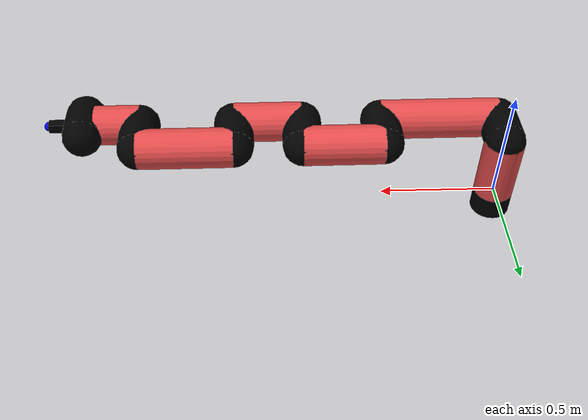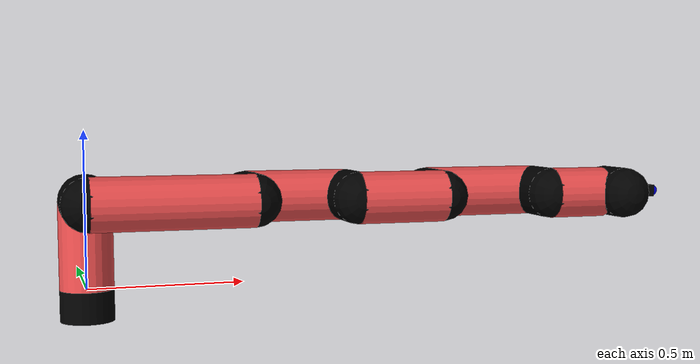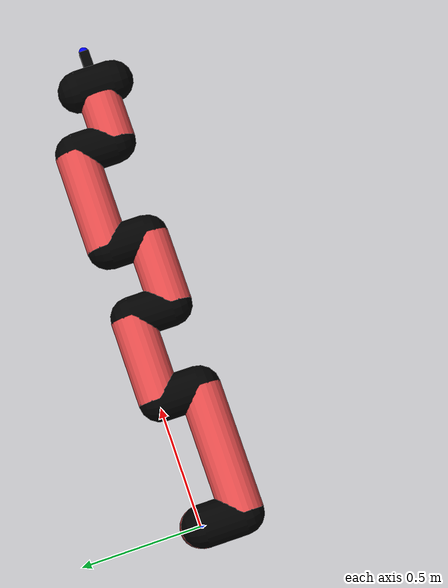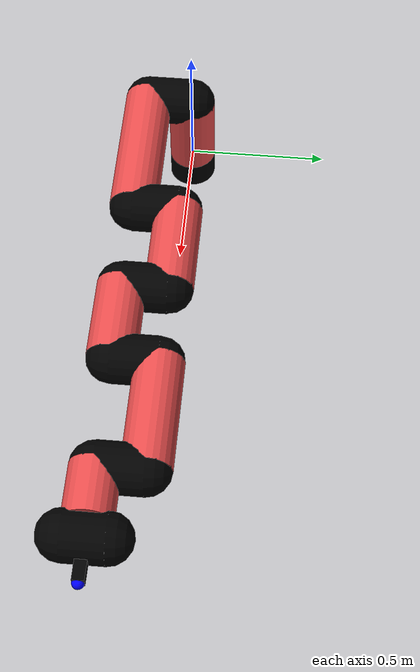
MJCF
<mujoco model="manipulator">
		<compiler angle="degree" coordinate="local" inertiafromgeom="auto" meshdir="meshes/"/>
		<option gravity="0 0 0" integrator="RK4" iterations="30" timestep="0.01"/>

		<default>
		<joint armature="1" limited="true" stiffness="10" damping="15" frictionloss="5.0"/>
		<geom conaffinity="1" condim="3" contype="1" friction=".5 .1 .1" margin="0.002"/>
		<motor ctrllimited="true"/>
		<position ctrllimited="true"/>
		</default>

		<asset>
		<texture builtin="gradient" height="100" rgb1="1.0 1.0 1.0" rgb2="1.0 1.0 1.0" type="skybox" width="100"/>
		<texture builtin="flat" height="32" name="arm_tex" rgb1="0.9 0.3 0.3" type="2d" width="32"/>
		<texture builtin="flat" height="32" name="gripper_tex" rgb1="0.0 0.0 0.0" type="cube" width="32"/>

		<material name="arm_mat" shininess="0.1" specular="0.1" texture="arm_tex"/>
		<material name="gripper_mat" shininess="1" specular="1" texture="gripper_tex"/>
		</asset>

		<worldbody>
		<light cutoff="45" diffuse=".8 .8 .8" dir="0 0.16 -1" directional="false" name="light" pos="0 -2.0 8.0" specular="0.3 0.3 0.3"/>

		<body name="base_link" pos="0 0 -0.1">
		<geom fromto="0 0 0 0 0 0.1" material="arm_mat" name="base_link" rgba="0.0 0.0 0.0 1" size="0.085" type="cylinder"/>
		</body>

		<body name="l1" pos="0 0 0">
<geom fromto="0 0 0 0 0 0.28" material="arm_mat" name="l1" rgba="0.9 0.3 0.3 1" size="0.085" type="cylinder"/>
<geom fromto="0 0 0.28 0 -0.16 0.28" material="arm_mat" name="l1_ex" rgba="0.0 0.0 0.0 1" size="0.085" type="capsule"/>
<joint axis="0 0 1" name="j1" pos="0 0 0" range="-90 90" damping="32.7" frictionloss="7.87"/>

<body name="l2" pos="0 -0.16 0.28">
<geom fromto="0 0 0 0.51 0 0" material="arm_mat" name="l2" rgba="0.9 0.3 0.3 1" size="0.085" type="cylinder"/>
<geom fromto="0.51 0 0 0.51 0.16 0" material="arm_mat" name="l2_ex" rgba="0.0 0.0 0.0 1" size="0.085" type="capsule"/>
<joint axis="0.0 1.0 0.0" name="j2" pos="0 0 0" range="-90 60" damping="30.02" frictionloss="11.19"/>

<body name="l3" pos="0.51 0.16 0">
<geom fromto="0 0 0 0.34 0 0" material="arm_mat" name="l3" rgba="0.9 0.3 0.3 1" size="0.085" type="cylinder"/>
<geom fromto="0.34 0 0 0.34 -0.16 0" material="arm_mat" name="l3_ex" rgba="0.0 0.0 0.0 1" size="0.085" type="capsule"/>
<joint axis="0.0 1.0 0.0" name="j3" pos="0 0 0" range="-30 60" damping="35.55" frictionloss="7.91"/>

<body name="l4" pos="0.34 -0.16 0">
<geom fromto="0 0 0 0.29 0 0" material="arm_mat" name="l4" rgba="0.9 0.3 0.3 1" size="0.085" type="cylinder"/>
<geom fromto="0.29 0 0 0.29 0.16 0" material="arm_mat" name="l4_ex" rgba="0.0 0.0 0.0 1" size="0.085" type="capsule"/>
<joint axis="0.0 1.0 0.0" name="j4" pos="0 0 0" range="-30 60" damping="23.4" frictionloss="9.3"/>

<body name="l5" pos="0.29 0.16 0">
<geom fromto="0 0 0 0.4 0 0" material="arm_mat" name="l5" rgba="0.9 0.3 0.3 1" size="0.085" type="cylinder"/>
<geom fromto="0.4 0 0 0.4 -0.16 0" material="arm_mat" name="l5_ex" rgba="0.0 0.0 0.0 1" size="0.085" type="capsule"/>
<joint axis="0.0 1.0 0.0" name="j5" pos="0 0 0" range="-30 60" damping="40.02" frictionloss="8.2"/>

<body name="l6" pos="0.4 -0.16 0">
<geom fromto="0 0 0 0.19 0 0" material="arm_mat" name="l6" rgba="0.9 0.3 0.3 1" size="0.085" type="cylinder"/>
<joint axis="0.0 1.0 0.0" name="j6" pos="0 0 0" range="-30 60" damping="19.72" frictionloss="10.09"/>

<body name="gripper" pos="0.19 0 0">
<geom fromto="0.05 -0.07 0 0.05 0.07 0" material="gripper_mat" name="gripper" rgba="0.0 0.0 0.0 1" size="0.085" type="capsule"/><joint axis="1 0 0" name="j7" pos="0 0 0" range="-90 90" damping="15" frictionloss="5.0"/><body name="finger" pos="0.1 0 0">
<geom fromto="0 0.0 0 0.1 0.0 0" material="gripper_mat" name="finger" rgba="0.0 0.0 0.0 1" size="0.020 0.06 0.06" type="box"/>
</body>
<site name="current" pos="0.2 0. 0.0" rgba="0. 0. 1.0 1" size="0.02" type="sphere"/>
</body>
</body>
</body>
</body>
</body>
</body>
</body>
</worldbody>
<actuator>
<motor ctrllimited="true" ctrlrange="-1.0 1.0" joint="j1" gear="48.48"/>
<motor ctrllimited="true" ctrlrange="-1.0 1.0" joint="j2" gear="76.05"/>
<motor ctrllimited="true" ctrlrange="-1.0 1.0" joint="j3" gear="79.68"/>
<motor ctrllimited="true" ctrlrange="-1.0 1.0" joint="j4" gear="83.87"/>
<motor ctrllimited="true" ctrlrange="-1.0 1.0" joint="j5" gear="89.37"/>
<motor ctrllimited="true" ctrlrange="-1.0 1.0" joint="j6" gear="104.16"/>
<motor ctrllimited="true" ctrlrange="-1.0 1.0" joint="j7" gear="80"/>
</actuator>
</mujoco>
